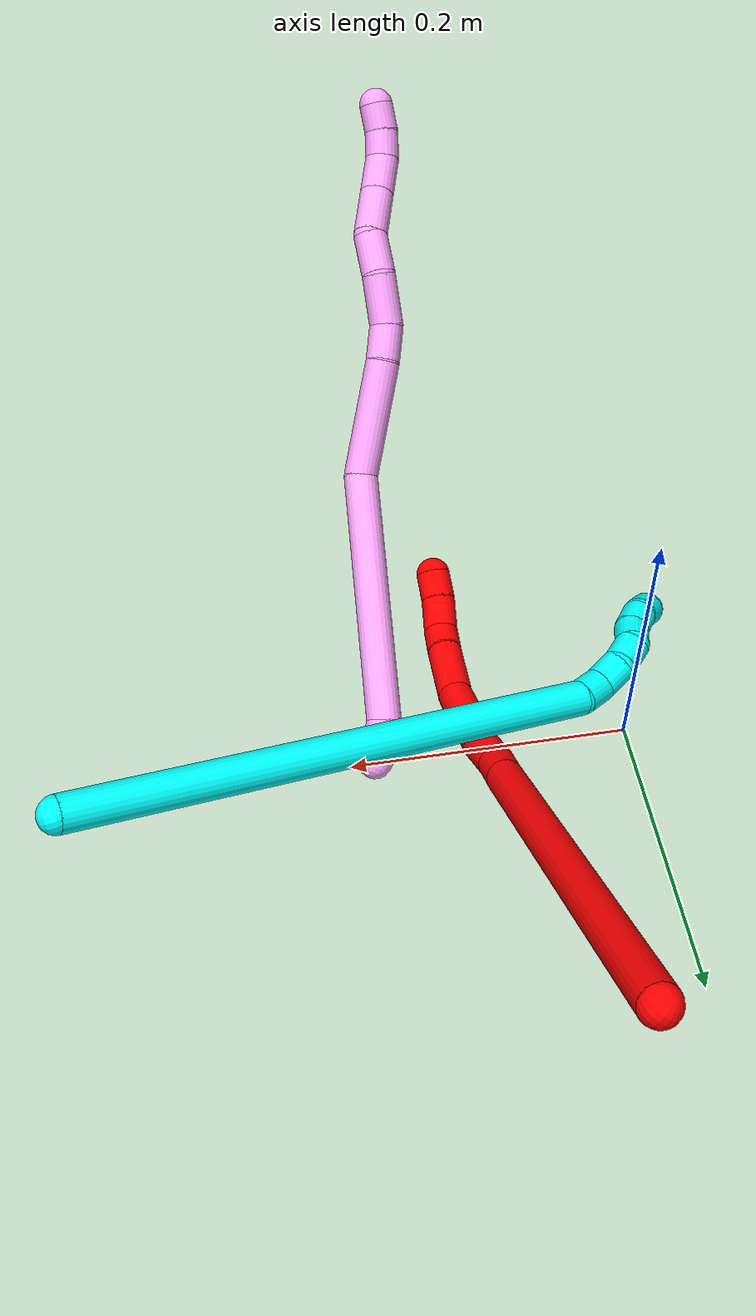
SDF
<sdf version="1.7">
 <world name="default">
  <model name="photoneo_s_sensor">
   <static>1</static>
   <pose>0 0 2 1.57079 1.57079 3.14159</pose>
   <link name="link">
    <inertial><mass>0.1</mass></inertial>
    <sensor name="sensor" type="depth">
     <update_rate>30</update_rate>
     <camera>
      <horizontal_fov>1.22</horizontal_fov>
      <image><width>1920</width><height>1200</height><format>B8G8R8</format></image>
      <clip><near>0.1</near><far>4</far></clip>
      <depth_camera><output>points</output></depth_camera>
     </camera>
     <plugin name="camera_plugin" filename="libgazebo_ros_depth_camera.so">
      <baseline>0.2</baseline>
      <alwaysOn>1</alwaysOn>
      <updateRate>0.0</updateRate>
      <cameraName>camera_ir</cameraName>
      <imageTopicName>/camera/color/image_raw</imageTopicName>
      <cameraInfoTopicName>/camera/color/camera_info</cameraInfoTopicName>
      <depthImageTopicName>/camera/depth/image_raw</depthImageTopicName>
      <depthImageCameraInfoTopicName>/camera/depth/camera_info</depthImageCameraInfoTopicName>
      <pointCloudTopicName>/camera/depth/points</pointCloudTopicName>
      <frameName>fr_optical</frameName>
      <pointCloudCutoff>0.1</pointCloudCutoff>
      <pointCloudCutoffMax>2.0</pointCloudCutoffMax>
      <distortionK1>0</distortionK1>
      <distortionK2>0</distortionK2>
      <distortionK3>0</distortionK3>
      <distortionT1>0</distortionT1>
      <distortionT2>0</distortionT2>
      <CxPrime>0</CxPrime>
      <Cx>0</Cx>
      <Cy>0</Cy>
      <focalLength>0</focalLength>
      <hackBaseline>0</hackBaseline>
     </plugin>
    </sensor>
   </link>
  </model>
  <model name="bin">
   <static>1</static>
   <link name="bottom">
    <collision name="collision-bottom">
     <pose>0 0 -0.01 0 -0 0</pose>
     <geometry><box><size>0.8 0.6 0.02</size></box></geometry>
     <surface>
      <friction><ode><mu>100</mu><mu2>100</mu2></ode></friction>
      <contact><collide_bitmask>65535</collide_bitmask></contact>
     </surface>
    </collision>
   </link>
   <link name="west_wall">
    <collision name="collision-west_wall">
     <pose>-0.41 0 0.1 0 -0 0</pose>
     <geometry><box><size>0.02 0.6 0.2</size></box></geometry>
     <surface>
      <friction><ode><mu>100</mu><mu2>100</mu2></ode></friction>
      <contact><collide_bitmask>65535</collide_bitmask></contact>
     </surface>
    </collision>
   </link>
   <link name="east_wall">
    <collision name="collision-east_wall">
     <pose>0.41 0 0.1 0 -0 0</pose>
     <geometry><box><size>0.02 0.6 0.2</size></box></geometry>
     <surface>
      <friction><ode><mu>100</mu><mu2>100</mu2></ode></friction>
      <contact><collide_bitmask>65535</collide_bitmask></contact>
     </surface>
    </collision>
   </link>
   <link name="south_wall">
    <collision name="collision-south_wall">
     <pose>0 -0.31 0.1 0 -0 0</pose>
     <geometry><box><size>0.8 0.02 0.2</size></box></geometry>
     <surface>
      <friction><ode><mu>100</mu><mu2>100</mu2></ode></friction>
      <contact><collide_bitmask>65535</collide_bitmask></contact>
     </surface>
    </collision>
   </link>
   <link name="north_wall">
    <collision name="collision-north_wall">
     <pose>0 0.31 0.1 0 -0 0</pose>
     <geometry><box><size>0.8 0.02 0.2</size></box></geometry>
     <surface>
      <friction><ode><mu>100</mu><mu2>100</mu2></ode></friction>
      <contact><collide_bitmask>65535</collide_bitmask></contact>
     </surface>
    </collision>
   </link>
  </model>
  <model name="2">
   <static>0</static>
   <link name="2">
    <collision name="collision-cylinder-e_1_1_4">
     <pose>0.016635 -0.127701 0.052505 1.18071 0.119899 0.080393</pose>
     <geometry><cylinder><radius>0.0125</radius><length>0.278144</length></cylinder></geometry>
     <surface>
      <friction><ode><mu>1.16</mu><mu2>1.16</mu2><slip1>0</slip1><slip2>0</slip2></ode></friction>
      <contact><ode><kp>1e+06</kp><kd>1</kd><max_vel>0</max_vel><min_depth>0.001</min_depth></ode></contact>
     </surface>
    </collision>
    <visual name="visual-cylinder-e_1_1_4">
     <pose>0.016635 -0.127701 0.052505 1.18071 0.119899 0.080393</pose>
     <geometry><cylinder><radius>0.0125</radius><length>0.278144</length></cylinder></geometry>
     <material><ambient>1 0 0 1</ambient></material>
    </visual>
    <collision name="collision-cylinder-e_2_4_5">
     <pose>0.034819 -0.266305 0.109156 1.20752 0.13209 0.091168</pose>
     <geometry><cylinder><radius>0.0125</radius><length>0.023534</length></cylinder></geometry>
     <surface>
      <friction><ode><mu>1.16</mu><mu2>1.16</mu2><slip1>0</slip1><slip2>0</slip2></ode></friction>
      <contact><ode><kp>1e+06</kp><kd>1</kd><max_vel>0</max_vel><min_depth>0.001</min_depth></ode></contact>
     </surface>
    </collision>
    <visual name="visual-cylinder-e_2_4_5">
     <pose>0.034819 -0.266305 0.109156 1.20752 0.13209 0.091168</pose>
     <geometry><cylinder><radius>0.0125</radius><length>0.023534</length></cylinder></geometry>
     <material><ambient>1 0 0 1</ambient></material>
    </visual>
    <collision name="collision-cylinder-e_3_5_6">
     <pose>0.036318 -0.290773 0.118828 1.18388 -0.003503 -0.002355</pose>
     <geometry><cylinder><radius>0.0125</radius><length>0.029296</length></cylinder></geometry>
     <surface>
      <friction><ode><mu>1.16</mu><mu2>1.16</mu2><slip1>0</slip1><slip2>0</slip2></ode></friction>
      <contact><ode><kp>1e+06</kp><kd>1</kd><max_vel>0</max_vel><min_depth>0.001</min_depth></ode></contact>
     </surface>
    </collision>
    <visual name="visual-cylinder-e_3_5_6">
     <pose>0.036318 -0.290773 0.118828 1.18388 -0.003503 -0.002355</pose>
     <geometry><cylinder><radius>0.0125</radius><length>0.029296</length></cylinder></geometry>
     <material><ambient>1 0 0 1</ambient></material>
    </visual>
    <collision name="collision-cylinder-e_4_6_7">
     <pose>0.034614 -0.333926 0.130583 1.36332 -0.054588 -0.044297</pose>
     <geometry><cylinder><radius>0.0125</radius><length>0.060562</length></cylinder></geometry>
     <surface>
      <friction><ode><mu>1.16</mu><mu2>1.16</mu2><slip1>0</slip1><slip2>0</slip2></ode></friction>
      <contact><ode><kp>1e+06</kp><kd>1</kd><max_vel>0</max_vel><min_depth>0.001</min_depth></ode></contact>
     </surface>
    </collision>
    <visual name="visual-cylinder-e_4_6_7">
     <pose>0.034614 -0.333926 0.130583 1.36332 -0.054588 -0.044297</pose>
     <geometry><cylinder><radius>0.0125</radius><length>0.060562</length></cylinder></geometry>
     <material><ambient>1 0 0 1</ambient></material>
    </visual>
    <collision name="collision-cylinder-e_5_7_8">
     <pose>0.030027 -0.384015 0.13504 1.657 -0.141696 -0.15442</pose>
     <geometry><cylinder><radius>0.0125</radius><length>0.041571</length></cylinder></geometry>
     <surface>
      <friction><ode><mu>1.16</mu><mu2>1.16</mu2><slip1>0</slip1><slip2>0</slip2></ode></friction>
      <contact><ode><kp>1e+06</kp><kd>1</kd><max_vel>0</max_vel><min_depth>0.001</min_depth></ode></contact>
     </surface>
    </collision>
    <visual name="visual-cylinder-e_5_7_8">
     <pose>0.030027 -0.384015 0.13504 1.657 -0.141696 -0.15442</pose>
     <geometry><cylinder><radius>0.0125</radius><length>0.041571</length></cylinder></geometry>
     <material><ambient>1 0 0 1</ambient></material>
    </visual>
    <collision name="collision-cylinder-e_6_8_9">
     <pose>0.026669 -0.414853 0.13285 1.61127 -0.040823 -0.042509</pose>
     <geometry><cylinder><radius>0.0125</radius><length>0.020711</length></cylinder></geometry>
     <surface>
      <friction><ode><mu>1.16</mu><mu2>1.16</mu2><slip1>0</slip1><slip2>0</slip2></ode></friction>
      <contact><ode><kp>1e+06</kp><kd>1</kd><max_vel>0</max_vel><min_depth>0.001</min_depth></ode></contact>
     </surface>
    </collision>
    <visual name="visual-cylinder-e_6_8_9">
     <pose>0.026669 -0.414853 0.13285 1.61127 -0.040823 -0.042509</pose>
     <geometry><cylinder><radius>0.0125</radius><length>0.020711</length></cylinder></geometry>
     <material><ambient>1 0 0 1</ambient></material>
    </visual>
    <collision name="collision-cylinder-e_7_9_10">
     <pose>0.022652 -0.436079 0.126848 2.04471 -0.285711 -0.462429</pose>
     <geometry><cylinder><radius>0.0125</radius><length>0.025505</length></cylinder></geometry>
     <surface>
      <friction><ode><mu>1.16</mu><mu2>1.16</mu2><slip1>0</slip1><slip2>0</slip2></ode></friction>
      <contact><ode><kp>1e+06</kp><kd>1</kd><max_vel>0</max_vel><min_depth>0.001</min_depth></ode></contact>
     </surface>
    </collision>
    <visual name="visual-cylinder-e_7_9_10">
     <pose>0.022652 -0.436079 0.126848 2.04471 -0.285711 -0.462429</pose>
     <geometry><cylinder><radius>0.0125</radius><length>0.025505</length></cylinder></geometry>
     <material><ambient>1 0 0 1</ambient></material>
    </visual>
    <collision name="collision-cylinder-e_8_10_2">
     <pose>0.015023 -0.455563 0.117178 2.0144 -0.400931 -0.622169</pose>
     <geometry><cylinder><radius>0.0125</radius><length>0.020677</length></cylinder></geometry>
     <surface>
      <friction><ode><mu>1.16</mu><mu2>1.16</mu2><slip1>0</slip1><slip2>0</slip2></ode></friction>
      <contact><ode><kp>1e+06</kp><kd>1</kd><max_vel>0</max_vel><min_depth>0.001</min_depth></ode></contact>
     </surface>
    </collision>
    <visual name="visual-cylinder-e_8_10_2">
     <pose>0.015023 -0.455563 0.117178 2.0144 -0.400931 -0.622169</pose>
     <geometry><cylinder><radius>0.0125</radius><length>0.020677</length></cylinder></geometry>
     <material><ambient>1 0 0 1</ambient></material>
    </visual>
    <collision name="collision-sphere-2">
     <pose>0.010988 -0.46416 0.113093 0 -0 0</pose>
     <geometry><sphere><radius>0.0125</radius></sphere></geometry>
     <surface>
      <friction><ode><mu>1.16</mu><mu2>1.16</mu2><slip1>0</slip1><slip2>0</slip2></ode></friction>
      <contact><ode><kp>1e+06</kp><kd>1</kd><max_vel>0</max_vel><min_depth>0.001</min_depth></ode></contact>
     </surface>
    </collision>
    <visual name="visual-sphere-2">
     <pose>0.010988 -0.46416 0.113093 0 -0 0</pose>
     <geometry><sphere><radius>0.0125</radius></sphere></geometry>
     <material><ambient>1 0 0 1</ambient></material>
    </visual>
    <collision name="collision-sphere-10">
     <pose>0.019058 -0.446965 0.121264 0 -0 0</pose>
     <geometry><sphere><radius>0.0125</radius></sphere></geometry>
     <surface>
      <friction><ode><mu>1.16</mu><mu2>1.16</mu2><slip1>0</slip1><slip2>0</slip2></ode></friction>
      <contact><ode><kp>1e+06</kp><kd>1</kd><max_vel>0</max_vel><min_depth>0.001</min_depth></ode></contact>
     </surface>
    </collision>
    <visual name="visual-sphere-10">
     <pose>0.019058 -0.446965 0.121264 0 -0 0</pose>
     <geometry><sphere><radius>0.0125</radius></sphere></geometry>
     <material><ambient>1 0 0 1</ambient></material>
    </visual>
    <collision name="collision-sphere-9">
     <pose>0.026246 -0.425192 0.132431 0 -0 0</pose>
     <geometry><sphere><radius>0.0125</radius></sphere></geometry>
     <surface>
      <friction><ode><mu>1.16</mu><mu2>1.16</mu2><slip1>0</slip1><slip2>0</slip2></ode></friction>
      <contact><ode><kp>1e+06</kp><kd>1</kd><max_vel>0</max_vel><min_depth>0.001</min_depth></ode></contact>
     </surface>
    </collision>
    <visual name="visual-sphere-9">
     <pose>0.026246 -0.425192 0.132431 0 -0 0</pose>
     <geometry><sphere><radius>0.0125</radius></sphere></geometry>
     <material><ambient>1 0 0 1</ambient></material>
    </visual>
    <collision name="collision-sphere-4">
     <pose>0.033269 -0.255401 0.105011 0 -0 0</pose>
     <geometry><sphere><radius>0.0125</radius></sphere></geometry>
     <surface>
      <friction><ode><mu>1.16</mu><mu2>1.16</mu2><slip1>0</slip1><slip2>0</slip2></ode></friction>
      <contact><ode><kp>1e+06</kp><kd>1</kd><max_vel>0</max_vel><min_depth>0.001</min_depth></ode></contact>
     </surface>
    </collision>
    <visual name="visual-sphere-4">
     <pose>0.033269 -0.255401 0.105011 0 -0 0</pose>
     <geometry><sphere><radius>0.0125</radius></sphere></geometry>
     <material><ambient>1 0 0 1</ambient></material>
    </visual>
    <collision name="collision-sphere-1">
     <geometry><sphere><radius>0.0125</radius></sphere></geometry>
     <surface>
      <friction><ode><mu>1.16</mu><mu2>1.16</mu2><slip1>0</slip1><slip2>0</slip2></ode></friction>
      <contact><ode><kp>1e+06</kp><kd>1</kd><max_vel>0</max_vel><min_depth>0.001</min_depth></ode></contact>
     </surface>
    </collision>
    <visual name="visual-sphere-1">
     <geometry><sphere><radius>0.0125</radius></sphere></geometry>
     <material><ambient>1 0 0 1</ambient></material>
    </visual>
    <collision name="collision-sphere-8">
     <pose>0.027091 -0.404515 0.133269 0 -0 0</pose>
     <geometry><sphere><radius>0.0125</radius></sphere></geometry>
     <surface>
      <friction><ode><mu>1.16</mu><mu2>1.16</mu2><slip1>0</slip1><slip2>0</slip2></ode></friction>
      <contact><ode><kp>1e+06</kp><kd>1</kd><max_vel>0</max_vel><min_depth>0.001</min_depth></ode></contact>
     </surface>
    </collision>
    <visual name="visual-sphere-8">
     <pose>0.027091 -0.404515 0.133269 0 -0 0</pose>
     <geometry><sphere><radius>0.0125</radius></sphere></geometry>
     <material><ambient>1 0 0 1</ambient></material>
    </visual>
    <collision name="collision-sphere-5">
     <pose>0.036369 -0.277208 0.1133 0 -0 0</pose>
     <geometry><sphere><radius>0.0125</radius></sphere></geometry>
     <surface>
      <friction><ode><mu>1.16</mu><mu2>1.16</mu2><slip1>0</slip1><slip2>0</slip2></ode></friction>
      <contact><ode><kp>1e+06</kp><kd>1</kd><max_vel>0</max_vel><min_depth>0.001</min_depth></ode></contact>
     </surface>
    </collision>
    <visual name="visual-sphere-5">
     <pose>0.036369 -0.277208 0.1133 0 -0 0</pose>
     <geometry><sphere><radius>0.0125</radius></sphere></geometry>
     <material><ambient>1 0 0 1</ambient></material>
    </visual>
    <collision name="collision-sphere-6">
     <pose>0.036266 -0.304339 0.124355 0 -0 0</pose>
     <geometry><sphere><radius>0.0125</radius></sphere></geometry>
     <surface>
      <friction><ode><mu>1.16</mu><mu2>1.16</mu2><slip1>0</slip1><slip2>0</slip2></ode></friction>
      <contact><ode><kp>1e+06</kp><kd>1</kd><max_vel>0</max_vel><min_depth>0.001</min_depth></ode></contact>
     </surface>
    </collision>
    <visual name="visual-sphere-6">
     <pose>0.036266 -0.304339 0.124355 0 -0 0</pose>
     <geometry><sphere><radius>0.0125</radius></sphere></geometry>
     <material><ambient>1 0 0 1</ambient></material>
    </visual>
    <collision name="collision-sphere-7">
     <pose>0.032962 -0.363514 0.136812 0 -0 0</pose>
     <geometry><sphere><radius>0.0125</radius></sphere></geometry>
     <surface>
      <friction><ode><mu>1.16</mu><mu2>1.16</mu2><slip1>0</slip1><slip2>0</slip2></ode></friction>
      <contact><ode><kp>1e+06</kp><kd>1</kd><max_vel>0</max_vel><min_depth>0.001</min_depth></ode></contact>
     </surface>
    </collision>
    <visual name="visual-sphere-7">
     <pose>0.032962 -0.363514 0.136812 0 -0 0</pose>
     <geometry><sphere><radius>0.0125</radius></sphere></geometry>
     <material><ambient>1 0 0 1</ambient></material>
    </visual>
    <inertial>
     <pose>0.022591 -0.231252 0.085172 0 -0 0</pose>
     <mass>0.5</mass>
     <inertia>
      <ixx>0.001964</ixx>
      <ixy>0</ixy>
      <ixz>0</ixz>
      <iyy>0.000808</iyy>
      <iyz>0</iyz>
      <izz>0.001491</izz>
     </inertia>
    </inertial>
   </link>
   <pose>0.087902 0.295866 0.211857 2.91501 0.598221 2.94667</pose>
  </model>
  <model name="3">
   <static>0</static>
   <link name="3">
    <collision name="collision-cylinder-e_1_1_4">
     <pose>-0.047578 -0.098538 -0.152987 2.56938 -0.255732 -0.824051</pose>
     <geometry><cylinder><radius>0.0125</radius><length>0.376183</length></cylinder></geometry>
     <surface>
      <friction><ode><mu>1.16</mu><mu2>1.16</mu2><slip1>0</slip1><slip2>0</slip2></ode></friction>
      <contact><ode><kp>1e+06</kp><kd>1</kd><max_vel>0</max_vel><min_depth>0.001</min_depth></ode></contact>
     </surface>
    </collision>
    <visual name="visual-cylinder-e_1_1_4">
     <pose>-0.047578 -0.098538 -0.152987 2.56938 -0.255732 -0.824051</pose>
     <geometry><cylinder><radius>0.0125</radius><length>0.376183</length></cylinder></geometry>
     <material><ambient>0.003922 1 0.996078 1</ambient></material>
    </visual>
    <collision name="collision-cylinder-e_2_4_5">
     <pose>-0.101252 -0.201868 -0.313394 2.56816 -0.603995 -1.62582</pose>
     <geometry><cylinder><radius>0.0125</radius><length>0.021462</length></cylinder></geometry>
     <surface>
      <friction><ode><mu>1.16</mu><mu2>1.16</mu2><slip1>0</slip1><slip2>0</slip2></ode></friction>
      <contact><ode><kp>1e+06</kp><kd>1</kd><max_vel>0</max_vel><min_depth>0.001</min_depth></ode></contact>
     </surface>
    </collision>
    <visual name="visual-cylinder-e_2_4_5">
     <pose>-0.101252 -0.201868 -0.313394 2.56816 -0.603995 -1.62582</pose>
     <geometry><cylinder><radius>0.0125</radius><length>0.021462</length></cylinder></geometry>
     <material><ambient>0.003922 1 0.996078 1</ambient></material>
    </visual>
    <collision name="collision-cylinder-e_3_5_6">
     <pose>-0.113218 -0.207144 -0.329714 3.08717 -0.582486 -2.96049</pose>
     <geometry><cylinder><radius>0.0125</radius><length>0.021348</length></cylinder></geometry>
     <surface>
      <friction><ode><mu>1.16</mu><mu2>1.16</mu2><slip1>0</slip1><slip2>0</slip2></ode></friction>
      <contact><ode><kp>1e+06</kp><kd>1</kd><max_vel>0</max_vel><min_depth>0.001</min_depth></ode></contact>
     </surface>
    </collision>
    <visual name="visual-cylinder-e_3_5_6">
     <pose>-0.113218 -0.207144 -0.329714 3.08717 -0.582486 -2.96049</pose>
     <geometry><cylinder><radius>0.0125</radius><length>0.021348</length></cylinder></geometry>
     <material><ambient>0.003922 1 0.996078 1</ambient></material>
    </visual>
    <collision name="collision-cylinder-e_4_6_7">
     <pose>-0.127014 -0.210012 -0.344827 2.77541 -0.872324 -2.3853</pose>
     <geometry><cylinder><radius>0.0125</radius><length>0.020694</length></cylinder></geometry>
     <surface>
      <friction><ode><mu>1.16</mu><mu2>1.16</mu2><slip1>0</slip1><slip2>0</slip2></ode></friction>
      <contact><ode><kp>1e+06</kp><kd>1</kd><max_vel>0</max_vel><min_depth>0.001</min_depth></ode></contact>
     </surface>
    </collision>
    <visual name="visual-cylinder-e_4_6_7">
     <pose>-0.127014 -0.210012 -0.344827 2.77541 -0.872324 -2.3853</pose>
     <geometry><cylinder><radius>0.0125</radius><length>0.020694</length></cylinder></geometry>
     <material><ambient>0.003922 1 0.996078 1</ambient></material>
    </visual>
    <collision name="collision-cylinder-e_5_7_8">
     <pose>-0.144219 -0.216257 -0.352419 1.91376 -1.15464 -1.49205</pose>
     <geometry><cylinder><radius>0.0125</radius><length>0.020296</length></cylinder></geometry>
     <surface>
      <friction><ode><mu>1.16</mu><mu2>1.16</mu2><slip1>0</slip1><slip2>0</slip2></ode></friction>
      <contact><ode><kp>1e+06</kp><kd>1</kd><max_vel>0</max_vel><min_depth>0.001</min_depth></ode></contact>
     </surface>
    </collision>
    <visual name="visual-cylinder-e_5_7_8">
     <pose>-0.144219 -0.216257 -0.352419 1.91376 -1.15464 -1.49205</pose>
     <geometry><cylinder><radius>0.0125</radius><length>0.020296</length></cylinder></geometry>
     <material><ambient>0.003922 1 0.996078 1</ambient></material>
    </visual>
    <collision name="collision-cylinder-e_6_8_9">
     <pose>-0.161603 -0.224115 -0.358107 2.39401 -0.943331 -1.83051</pose>
     <geometry><cylinder><radius>0.0125</radius><length>0.020017</length></cylinder></geometry>
     <surface>
      <friction><ode><mu>1.16</mu><mu2>1.16</mu2><slip1>0</slip1><slip2>0</slip2></ode></friction>
      <contact><ode><kp>1e+06</kp><kd>1</kd><max_vel>0</max_vel><min_depth>0.001</min_depth></ode></contact>
     </surface>
    </collision>
    <visual name="visual-cylinder-e_6_8_9">
     <pose>-0.161603 -0.224115 -0.358107 2.39401 -0.943331 -1.83051</pose>
     <geometry><cylinder><radius>0.0125</radius><length>0.020017</length></cylinder></geometry>
     <material><ambient>0.003922 1 0.996078 1</ambient></material>
    </visual>
    <collision name="collision-cylinder-e_7_9_2">
     <pose>-0.176057 -0.235146 -0.365603 1.99606 -0.688301 -1.01455</pose>
     <geometry><cylinder><radius>0.0125</radius><length>0.02</length></cylinder></geometry>
     <surface>
      <friction><ode><mu>1.16</mu><mu2>1.16</mu2><slip1>0</slip1><slip2>0</slip2></ode></friction>
      <contact><ode><kp>1e+06</kp><kd>1</kd><max_vel>0</max_vel><min_depth>0.001</min_depth></ode></contact>
     </surface>
    </collision>
    <visual name="visual-cylinder-e_7_9_2">
     <pose>-0.176057 -0.235146 -0.365603 1.99606 -0.688301 -1.01455</pose>
     <geometry><cylinder><radius>0.0125</radius><length>0.02</length></cylinder></geometry>
     <material><ambient>0.003922 1 0.996078 1</ambient></material>
    </visual>
    <collision name="collision-sphere-2">
     <pose>-0.18241 -0.242181 -0.368789 0 -0 0</pose>
     <geometry><sphere><radius>0.0125</radius></sphere></geometry>
     <surface>
      <friction><ode><mu>1.16</mu><mu2>1.16</mu2><slip1>0</slip1><slip2>0</slip2></ode></friction>
      <contact><ode><kp>1e+06</kp><kd>1</kd><max_vel>0</max_vel><min_depth>0.001</min_depth></ode></contact>
     </surface>
    </collision>
    <visual name="visual-sphere-2">
     <pose>-0.18241 -0.242181 -0.368789 0 -0 0</pose>
     <geometry><sphere><radius>0.0125</radius></sphere></geometry>
     <material><ambient>0.003922 1 0.996078 1</ambient></material>
    </visual>
    <collision name="collision-sphere-9">
     <pose>-0.169705 -0.22811 -0.362417 0 -0 0</pose>
     <geometry><sphere><radius>0.0125</radius></sphere></geometry>
     <surface>
      <friction><ode><mu>1.16</mu><mu2>1.16</mu2><slip1>0</slip1><slip2>0</slip2></ode></friction>
      <contact><ode><kp>1e+06</kp><kd>1</kd><max_vel>0</max_vel><min_depth>0.001</min_depth></ode></contact>
     </surface>
    </collision>
    <visual name="visual-sphere-9">
     <pose>-0.169705 -0.22811 -0.362417 0 -0 0</pose>
     <geometry><sphere><radius>0.0125</radius></sphere></geometry>
     <material><ambient>0.003922 1 0.996078 1</ambient></material>
    </visual>
    <collision name="collision-sphere-4">
     <pose>-0.095157 -0.197076 -0.305974 0 -0 0</pose>
     <geometry><sphere><radius>0.0125</radius></sphere></geometry>
     <surface>
      <friction><ode><mu>1.16</mu><mu2>1.16</mu2><slip1>0</slip1><slip2>0</slip2></ode></friction>
      <contact><ode><kp>1e+06</kp><kd>1</kd><max_vel>0</max_vel><min_depth>0.001</min_depth></ode></contact>
     </surface>
    </collision>
    <visual name="visual-sphere-4">
     <pose>-0.095157 -0.197076 -0.305974 0 -0 0</pose>
     <geometry><sphere><radius>0.0125</radius></sphere></geometry>
     <material><ambient>0.003922 1 0.996078 1</ambient></material>
    </visual>
    <collision name="collision-sphere-1">
     <geometry><sphere><radius>0.0125</radius></sphere></geometry>
     <surface>
      <friction><ode><mu>1.16</mu><mu2>1.16</mu2><slip1>0</slip1><slip2>0</slip2></ode></friction>
      <contact><ode><kp>1e+06</kp><kd>1</kd><max_vel>0</max_vel><min_depth>0.001</min_depth></ode></contact>
     </surface>
    </collision>
    <visual name="visual-sphere-1">
     <geometry><sphere><radius>0.0125</radius></sphere></geometry>
     <material><ambient>0.003922 1 0.996078 1</ambient></material>
    </visual>
    <collision name="collision-sphere-8">
     <pose>-0.153501 -0.220121 -0.353798 0 -0 0</pose>
     <geometry><sphere><radius>0.0125</radius></sphere></geometry>
     <surface>
      <friction><ode><mu>1.16</mu><mu2>1.16</mu2><slip1>0</slip1><slip2>0</slip2></ode></friction>
      <contact><ode><kp>1e+06</kp><kd>1</kd><max_vel>0</max_vel><min_depth>0.001</min_depth></ode></contact>
     </surface>
    </collision>
    <visual name="visual-sphere-8">
     <pose>-0.153501 -0.220121 -0.353798 0 -0 0</pose>
     <geometry><sphere><radius>0.0125</radius></sphere></geometry>
     <material><ambient>0.003922 1 0.996078 1</ambient></material>
    </visual>
    <collision name="collision-sphere-5">
     <pose>-0.107346 -0.206659 -0.320813 0 -0 0</pose>
     <geometry><sphere><radius>0.0125</radius></sphere></geometry>
     <surface>
      <friction><ode><mu>1.16</mu><mu2>1.16</mu2><slip1>0</slip1><slip2>0</slip2></ode></friction>
      <contact><ode><kp>1e+06</kp><kd>1</kd><max_vel>0</max_vel><min_depth>0.001</min_depth></ode></contact>
     </surface>
    </collision>
    <visual name="visual-sphere-5">
     <pose>-0.107346 -0.206659 -0.320813 0 -0 0</pose>
     <geometry><sphere><radius>0.0125</radius></sphere></geometry>
     <material><ambient>0.003922 1 0.996078 1</ambient></material>
    </visual>
    <collision name="collision-sphere-6">
     <pose>-0.11909 -0.207629 -0.338615 0 -0 0</pose>
     <geometry><sphere><radius>0.0125</radius></sphere></geometry>
     <surface>
      <friction><ode><mu>1.16</mu><mu2>1.16</mu2><slip1>0</slip1><slip2>0</slip2></ode></friction>
      <contact><ode><kp>1e+06</kp><kd>1</kd><max_vel>0</max_vel><min_depth>0.001</min_depth></ode></contact>
     </surface>
    </collision>
    <visual name="visual-sphere-6">
     <pose>-0.11909 -0.207629 -0.338615 0 -0 0</pose>
     <geometry><sphere><radius>0.0125</radius></sphere></geometry>
     <material><ambient>0.003922 1 0.996078 1</ambient></material>
    </visual>
    <collision name="collision-sphere-7">
     <pose>-0.134937 -0.212394 -0.351039 0 -0 0</pose>
     <geometry><sphere><radius>0.0125</radius></sphere></geometry>
     <surface>
      <friction><ode><mu>1.16</mu><mu2>1.16</mu2><slip1>0</slip1><slip2>0</slip2></ode></friction>
      <contact><ode><kp>1e+06</kp><kd>1</kd><max_vel>0</max_vel><min_depth>0.001</min_depth></ode></contact>
     </surface>
    </collision>
    <visual name="visual-sphere-7">
     <pose>-0.134937 -0.212394 -0.351039 0 -0 0</pose>
     <geometry><sphere><radius>0.0125</radius></sphere></geometry>
     <material><ambient>0.003922 1 0.996078 1</ambient></material>
    </visual>
    <inertial>
     <pose>-0.069599 -0.127494 -0.200169 0 -0 0</pose>
     <mass>0.5</mass>
     <inertia>
      <ixx>-0.000256</ixx>
      <ixy>0</ixy>
      <ixz>0</ixz>
      <iyy>-0.005272</iyy>
      <iyz>0</iyz>
      <izz>0.003439</izz>
     </inertia>
    </inertial>
   </link>
   <pose>0.388479 0.089213 0.130653 1.89542 0.00991 1.56439</pose>
  </model>
  <model name="4">
   <static>0</static>
   <link name="4">
    <collision name="collision-cylinder-e_1_1_4">
     <pose>0.000362 -0.000905 0.014171 0.063801 0.02546 0.000813</pose>
     <geometry><cylinder><radius>0.0125</radius><length>0.028409</length></cylinder></geometry>
     <surface>
      <friction><ode><mu>1.16</mu><mu2>1.16</mu2><slip1>0</slip1><slip2>0</slip2></ode></friction>
      <contact><ode><kp>1e+06</kp><kd>1</kd><max_vel>0</max_vel><min_depth>0.001</min_depth></ode></contact>
     </surface>
    </collision>
    <visual name="visual-cylinder-e_1_1_4">
     <pose>0.000362 -0.000905 0.014171 0.063801 0.02546 0.000813</pose>
     <geometry><cylinder><radius>0.0125</radius><length>0.028409</length></cylinder></geometry>
     <material><ambient>1 0.65098 0.996078 1</ambient></material>
    </visual>
    <collision name="collision-cylinder-e_2_4_5">
     <pose>-0.005849 -0.0361 0.112977 0.384931 -0.07185 -0.014008</pose>
     <geometry><cylinder><radius>0.0125</radius><length>0.183106</length></cylinder></geometry>
     <surface>
      <friction><ode><mu>1.16</mu><mu2>1.16</mu2><slip1>0</slip1><slip2>0</slip2></ode></friction>
      <contact><ode><kp>1e+06</kp><kd>1</kd><max_vel>0</max_vel><min_depth>0.001</min_depth></ode></contact>
     </surface>
    </collision>
    <visual name="visual-cylinder-e_2_4_5">
     <pose>-0.005849 -0.0361 0.112977 0.384931 -0.07185 -0.014008</pose>
     <geometry><cylinder><radius>0.0125</radius><length>0.183106</length></cylinder></geometry>
     <material><ambient>1 0.65098 0.996078 1</ambient></material>
    </visual>
    <collision name="collision-cylinder-e_3_5_6">
     <pose>0.000609 -0.082749 0.236797 0.305542 0.307107 0.047652</pose>
     <geometry><cylinder><radius>0.0125</radius><length>0.086211</length></cylinder></geometry>
     <surface>
      <friction><ode><mu>1.16</mu><mu2>1.16</mu2><slip1>0</slip1><slip2>0</slip2></ode></friction>
      <contact><ode><kp>1e+06</kp><kd>1</kd><max_vel>0</max_vel><min_depth>0.001</min_depth></ode></contact>
     </surface>
    </collision>
    <visual name="visual-cylinder-e_3_5_6">
     <pose>0.000609 -0.082749 0.236797 0.305542 0.307107 0.047652</pose>
     <geometry><cylinder><radius>0.0125</radius><length>0.086211</length></cylinder></geometry>
     <material><ambient>1 0.65098 0.996078 1</ambient></material>
    </visual>
    <collision name="collision-cylinder-e_4_6_7">
     <pose>0.015952 -0.099254 0.288621 0.316971 0.172113 0.027575</pose>
     <geometry><cylinder><radius>0.0125</radius><length>0.027</length></cylinder></geometry>
     <surface>
      <friction><ode><mu>1.16</mu><mu2>1.16</mu2><slip1>0</slip1><slip2>0</slip2></ode></friction>
      <contact><ode><kp>1e+06</kp><kd>1</kd><max_vel>0</max_vel><min_depth>0.001</min_depth></ode></contact>
     </surface>
    </collision>
    <visual name="visual-cylinder-e_4_6_7">
     <pose>0.015952 -0.099254 0.288621 0.316971 0.172113 0.027575</pose>
     <geometry><cylinder><radius>0.0125</radius><length>0.027</length></cylinder></geometry>
     <material><ambient>1 0.65098 0.996078 1</ambient></material>
    </visual>
    <collision name="collision-cylinder-e_5_7_8">
     <pose>0.021067 -0.114266 0.316416 0.622003 0.14919 0.048034</pose>
     <geometry><cylinder><radius>0.0125</radius><length>0.037718</length></cylinder></geometry>
     <surface>
      <friction><ode><mu>1.16</mu><mu2>1.16</mu2><slip1>0</slip1><slip2>0</slip2></ode></friction>
      <contact><ode><kp>1e+06</kp><kd>1</kd><max_vel>0</max_vel><min_depth>0.001</min_depth></ode></contact>
     </surface>
    </collision>
    <visual name="visual-cylinder-e_5_7_8">
     <pose>0.021067 -0.114266 0.316416 0.622003 0.14919 0.048034</pose>
     <geometry><cylinder><radius>0.0125</radius><length>0.037718</length></cylinder></geometry>
     <material><ambient>1 0.65098 0.996078 1</ambient></material>
    </visual>
    <collision name="collision-cylinder-e_6_8_9">
     <pose>0.022818 -0.132811 0.344984 0.519976 -0.068005 -0.018097</pose>
     <geometry><cylinder><radius>0.0125</radius><length>0.03098</length></cylinder></geometry>
     <surface>
      <friction><ode><mu>1.16</mu><mu2>1.16</mu2><slip1>0</slip1><slip2>0</slip2></ode></friction>
      <contact><ode><kp>1e+06</kp><kd>1</kd><max_vel>0</max_vel><min_depth>0.001</min_depth></ode></contact>
     </surface>
    </collision>
    <visual name="visual-cylinder-e_6_8_9">
     <pose>0.022818 -0.132811 0.344984 0.519976 -0.068005 -0.018097</pose>
     <geometry><cylinder><radius>0.0125</radius><length>0.03098</length></cylinder></geometry>
     <material><ambient>1 0.65098 0.996078 1</ambient></material>
    </visual>
    <collision name="collision-cylinder-e_7_9_10">
     <pose>0.020846 -0.142796 0.376652 0.12567 -0.049928 -0.003142</pose>
     <geometry><cylinder><radius>0.0125</radius><length>0.03685</length></cylinder></geometry>
     <surface>
      <friction><ode><mu>1.16</mu><mu2>1.16</mu2><slip1>0</slip1><slip2>0</slip2></ode></friction>
      <contact><ode><kp>1e+06</kp><kd>1</kd><max_vel>0</max_vel><min_depth>0.001</min_depth></ode></contact>
     </surface>
    </collision>
    <visual name="visual-cylinder-e_7_9_10">
     <pose>0.020846 -0.142796 0.376652 0.12567 -0.049928 -0.003142</pose>
     <geometry><cylinder><radius>0.0125</radius><length>0.03685</length></cylinder></geometry>
     <material><ambient>1 0.65098 0.996078 1</ambient></material>
    </visual>
    <collision name="collision-cylinder-e_8_10_11">
     <pose>0.020941 -0.147924 0.409036 0.197103 0.070298 0.006953</pose>
     <geometry><cylinder><radius>0.0125</radius><length>0.028882</length></cylinder></geometry>
     <surface>
      <friction><ode><mu>1.16</mu><mu2>1.16</mu2><slip1>0</slip1><slip2>0</slip2></ode></friction>
      <contact><ode><kp>1e+06</kp><kd>1</kd><max_vel>0</max_vel><min_depth>0.001</min_depth></ode></contact>
     </surface>
    </collision>
    <visual name="visual-cylinder-e_8_10_11">
     <pose>0.020941 -0.147924 0.409036 0.197103 0.070298 0.006953</pose>
     <geometry><cylinder><radius>0.0125</radius><length>0.028882</length></cylinder></geometry>
     <material><ambient>1 0.65098 0.996078 1</ambient></material>
    </visual>
    <collision name="collision-cylinder-e_9_11_12">
     <pose>0.023762 -0.155486 0.432189 0.48359 0.175353 0.04335</pose>
     <geometry><cylinder><radius>0.0125</radius><length>0.020712</length></cylinder></geometry>
     <surface>
      <friction><ode><mu>1.16</mu><mu2>1.16</mu2><slip1>0</slip1><slip2>0</slip2></ode></friction>
      <contact><ode><kp>1e+06</kp><kd>1</kd><max_vel>0</max_vel><min_depth>0.001</min_depth></ode></contact>
     </surface>
    </collision>
    <visual name="visual-cylinder-e_9_11_12">
     <pose>0.023762 -0.155486 0.432189 0.48359 0.175353 0.04335</pose>
     <geometry><cylinder><radius>0.0125</radius><length>0.020712</length></cylinder></geometry>
     <material><ambient>1 0.65098 0.996078 1</ambient></material>
    </visual>
    <collision name="collision-cylinder-e_10_12_2">
     <pose>0.026915 -0.166497 0.448976 0.679697 0.134211 0.047515</pose>
     <geometry><cylinder><radius>0.0125</radius><length>0.020132</length></cylinder></geometry>
     <surface>
      <friction><ode><mu>1.16</mu><mu2>1.16</mu2><slip1>0</slip1><slip2>0</slip2></ode></friction>
      <contact><ode><kp>1e+06</kp><kd>1</kd><max_vel>0</max_vel><min_depth>0.001</min_depth></ode></contact>
     </surface>
    </collision>
    <visual name="visual-cylinder-e_10_12_2">
     <pose>0.026915 -0.166497 0.448976 0.679697 0.134211 0.047515</pose>
     <geometry><cylinder><radius>0.0125</radius><length>0.020132</length></cylinder></geometry>
     <material><ambient>1 0.65098 0.996078 1</ambient></material>
    </visual>
    <collision name="collision-sphere-2">
     <pose>0.028262 -0.172768 0.456735 0 -0 0</pose>
     <geometry><sphere><radius>0.0125</radius></sphere></geometry>
     <surface>
      <friction><ode><mu>1.16</mu><mu2>1.16</mu2><slip1>0</slip1><slip2>0</slip2></ode></friction>
      <contact><ode><kp>1e+06</kp><kd>1</kd><max_vel>0</max_vel><min_depth>0.001</min_depth></ode></contact>
     </surface>
    </collision>
    <visual name="visual-sphere-2">
     <pose>0.028262 -0.172768 0.456735 0 -0 0</pose>
     <geometry><sphere><radius>0.0125</radius></sphere></geometry>
     <material><ambient>1 0.65098 0.996078 1</ambient></material>
    </visual>
    <collision name="collision-sphere-12">
     <pose>0.025568 -0.160227 0.441217 0 -0 0</pose>
     <geometry><sphere><radius>0.0125</radius></sphere></geometry>
     <surface>
      <friction><ode><mu>1.16</mu><mu2>1.16</mu2><slip1>0</slip1><slip2>0</slip2></ode></friction>
      <contact><ode><kp>1e+06</kp><kd>1</kd><max_vel>0</max_vel><min_depth>0.001</min_depth></ode></contact>
     </surface>
    </collision>
    <visual name="visual-sphere-12">
     <pose>0.025568 -0.160227 0.441217 0 -0 0</pose>
     <geometry><sphere><radius>0.0125</radius></sphere></geometry>
     <material><ambient>1 0.65098 0.996078 1</ambient></material>
    </visual>
    <collision name="collision-sphere-11">
     <pose>0.021955 -0.150745 0.423162 0 -0 0</pose>
     <geometry><sphere><radius>0.0125</radius></sphere></geometry>
     <surface>
      <friction><ode><mu>1.16</mu><mu2>1.16</mu2><slip1>0</slip1><slip2>0</slip2></ode></friction>
      <contact><ode><kp>1e+06</kp><kd>1</kd><max_vel>0</max_vel><min_depth>0.001</min_depth></ode></contact>
     </surface>
    </collision>
    <visual name="visual-sphere-11">
     <pose>0.021955 -0.150745 0.423162 0 -0 0</pose>
     <geometry><sphere><radius>0.0125</radius></sphere></geometry>
     <material><ambient>1 0.65098 0.996078 1</ambient></material>
    </visual>
    <collision name="collision-sphere-10">
     <pose>0.019926 -0.145103 0.394909 0 -0 0</pose>
     <geometry><sphere><radius>0.0125</radius></sphere></geometry>
     <surface>
      <friction><ode><mu>1.16</mu><mu2>1.16</mu2><slip1>0</slip1><slip2>0</slip2></ode></friction>
      <contact><ode><kp>1e+06</kp><kd>1</kd><max_vel>0</max_vel><min_depth>0.001</min_depth></ode></contact>
     </surface>
    </collision>
    <visual name="visual-sphere-10">
     <pose>0.019926 -0.145103 0.394909 0 -0 0</pose>
     <geometry><sphere><radius>0.0125</radius></sphere></geometry>
     <material><ambient>1 0.65098 0.996078 1</ambient></material>
    </visual>
    <collision name="collision-sphere-9">
     <pose>0.021765 -0.14049 0.358396 0 -0 0</pose>
     <geometry><sphere><radius>0.0125</radius></sphere></geometry>
     <surface>
      <friction><ode><mu>1.16</mu><mu2>1.16</mu2><slip1>0</slip1><slip2>0</slip2></ode></friction>
      <contact><ode><kp>1e+06</kp><kd>1</kd><max_vel>0</max_vel><min_depth>0.001</min_depth></ode></contact>
     </surface>
    </collision>
    <visual name="visual-sphere-9">
     <pose>0.021765 -0.14049 0.358396 0 -0 0</pose>
     <geometry><sphere><radius>0.0125</radius></sphere></geometry>
     <material><ambient>1 0.65098 0.996078 1</ambient></material>
    </visual>
    <collision name="collision-sphere-4">
     <pose>0.000723 -0.001811 0.028342 0 -0 0</pose>
     <geometry><sphere><radius>0.0125</radius></sphere></geometry>
     <surface>
      <friction><ode><mu>1.16</mu><mu2>1.16</mu2><slip1>0</slip1><slip2>0</slip2></ode></friction>
      <contact><ode><kp>1e+06</kp><kd>1</kd><max_vel>0</max_vel><min_depth>0.001</min_depth></ode></contact>
     </surface>
    </collision>
    <visual name="visual-sphere-4">
     <pose>0.000723 -0.001811 0.028342 0 -0 0</pose>
     <geometry><sphere><radius>0.0125</radius></sphere></geometry>
     <material><ambient>1 0.65098 0.996078 1</ambient></material>
    </visual>
    <collision name="collision-sphere-1">
     <geometry><sphere><radius>0.0125</radius></sphere></geometry>
     <surface>
      <friction><ode><mu>1.16</mu><mu2>1.16</mu2><slip1>0</slip1><slip2>0</slip2></ode></friction>
      <contact><ode><kp>1e+06</kp><kd>1</kd><max_vel>0</max_vel><min_depth>0.001</min_depth></ode></contact>
     </surface>
    </collision>
    <visual name="visual-sphere-1">
     <geometry><sphere><radius>0.0125</radius></sphere></geometry>
     <material><ambient>1 0.65098 0.996078 1</ambient></material>
    </visual>
    <collision name="collision-sphere-8">
     <pose>0.023871 -0.125133 0.331572 0 -0 0</pose>
     <geometry><sphere><radius>0.0125</radius></sphere></geometry>
     <surface>
      <friction><ode><mu>1.16</mu><mu2>1.16</mu2><slip1>0</slip1><slip2>0</slip2></ode></friction>
      <contact><ode><kp>1e+06</kp><kd>1</kd><max_vel>0</max_vel><min_depth>0.001</min_depth></ode></contact>
     </surface>
    </collision>
    <visual name="visual-sphere-8">
     <pose>0.023871 -0.125133 0.331572 0 -0 0</pose>
     <geometry><sphere><radius>0.0125</radius></sphere></geometry>
     <material><ambient>1 0.65098 0.996078 1</ambient></material>
    </visual>
    <collision name="collision-sphere-5">
     <pose>-0.012422 -0.070389 0.197612 0 -0 0</pose>
     <geometry><sphere><radius>0.0125</radius></sphere></geometry>
     <surface>
      <friction><ode><mu>1.16</mu><mu2>1.16</mu2><slip1>0</slip1><slip2>0</slip2></ode></friction>
      <contact><ode><kp>1e+06</kp><kd>1</kd><max_vel>0</max_vel><min_depth>0.001</min_depth></ode></contact>
     </surface>
    </collision>
    <visual name="visual-sphere-5">
     <pose>-0.012422 -0.070389 0.197612 0 -0 0</pose>
     <geometry><sphere><radius>0.0125</radius></sphere></geometry>
     <material><ambient>1 0.65098 0.996078 1</ambient></material>
    </visual>
    <collision name="collision-sphere-6">
     <pose>0.01364 -0.095109 0.275983 0 -0 0</pose>
     <geometry><sphere><radius>0.0125</radius></sphere></geometry>
     <surface>
      <friction><ode><mu>1.16</mu><mu2>1.16</mu2><slip1>0</slip1><slip2>0</slip2></ode></friction>
      <contact><ode><kp>1e+06</kp><kd>1</kd><max_vel>0</max_vel><min_depth>0.001</min_depth></ode></contact>
     </surface>
    </collision>
    <visual name="visual-sphere-6">
     <pose>0.01364 -0.095109 0.275983 0 -0 0</pose>
     <geometry><sphere><radius>0.0125</radius></sphere></geometry>
     <material><ambient>1 0.65098 0.996078 1</ambient></material>
    </visual>
    <collision name="collision-sphere-7">
     <pose>0.018264 -0.1034 0.301259 0 -0 0</pose>
     <geometry><sphere><radius>0.0125</radius></sphere></geometry>
     <surface>
      <friction><ode><mu>1.16</mu><mu2>1.16</mu2><slip1>0</slip1><slip2>0</slip2></ode></friction>
      <contact><ode><kp>1e+06</kp><kd>1</kd><max_vel>0</max_vel><min_depth>0.001</min_depth></ode></contact>
     </surface>
    </collision>
    <visual name="visual-sphere-7">
     <pose>0.018264 -0.1034 0.301259 0 -0 0</pose>
     <geometry><sphere><radius>0.0125</radius></sphere></geometry>
     <material><ambient>1 0.65098 0.996078 1</ambient></material>
    </visual>
    <inertial>
     <pose>0.006662 -0.081961 0.231205 0 -0 0</pose>
     <mass>0.5</mass>
     <inertia>
      <ixx>0.000596</ixx>
      <ixy>0</ixy>
      <ixz>0</ixz>
      <iyy>0.000542</iyy>
      <iyz>0</iyz>
      <izz>0.000274</izz>
     </inertia>
    </inertial>
   </link>
   <pose>0.18314 0.004716 0.011796 -1.13722 -0.792411 2.39293</pose>
  </model>
 </world>
</sdf>
